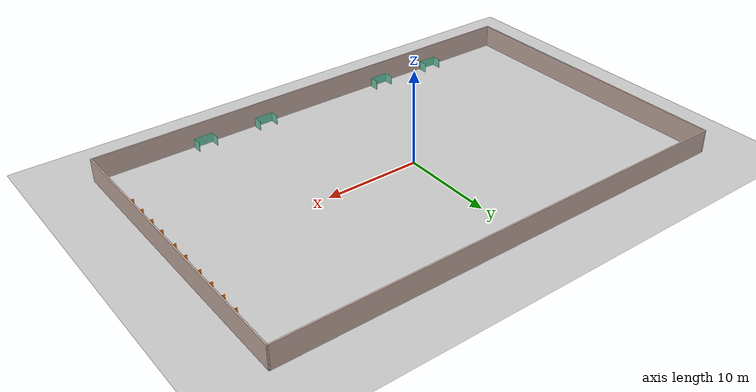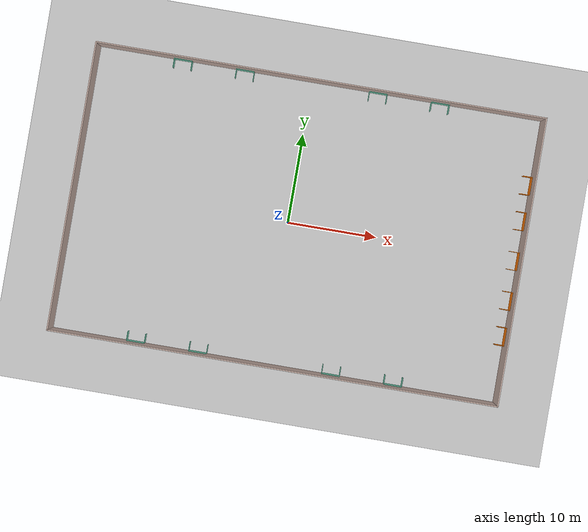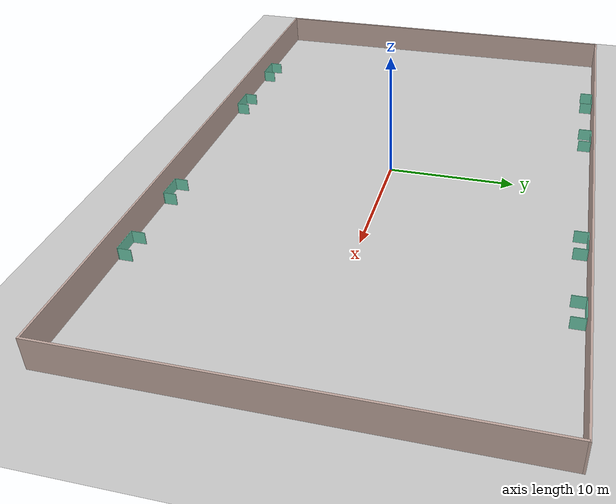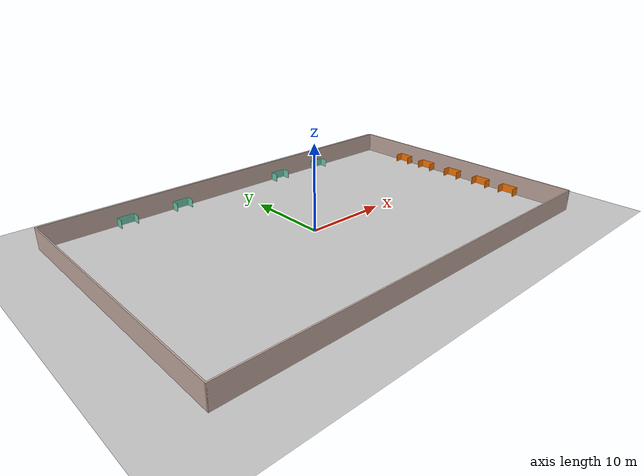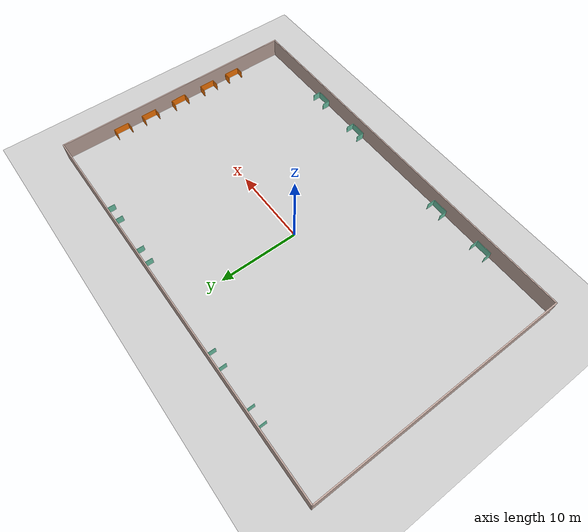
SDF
<sdf version="1.6">
 <world name="default">
  <include><uri>model://sun</uri></include>
  <include><uri>model://ground_plane</uri></include>
  <gravity>0 0 -9.8</gravity>
  <physics default="0" name="default_physics" type="ode">
   <max_step_size>0.001</max_step_size>
   <real_time_factor>1</real_time_factor>
   <real_time_update_rate>1000</real_time_update_rate>
  </physics>
  <model name="robot_park_01">
   <include><uri>model://robot_park</uri></include>
   <pose>14.5 -15.9 -0.05 0 0 0</pose>
  </model>
  <model name="robot_park_02">
   <include><uri>model://robot_park</uri></include>
   <pose>7.5 -15.9 -0.05 0 0 0</pose>
  </model>
  <model name="robot_park_03">
   <include><uri>model://robot_park</uri></include>
   <pose>-7.5 -15.9 -0.05 0 0 0</pose>
  </model>
  <model name="robot_park_04">
   <include><uri>model://robot_park</uri></include>
   <pose>-14.5 -15.9 -0.05 0 0 0</pose>
  </model>
  <model name="robot_park_05">
   <include><uri>model://robot_park</uri></include>
   <pose>14.5 15.9 0 0 0 3.141592654</pose>
  </model>
  <model name="robot_park_06">
   <include><uri>model://robot_park</uri></include>
   <pose>7.5 15.9 0 0 0 3.141592654</pose>
  </model>
  <model name="robot_park_07">
   <include><uri>model://robot_park</uri></include>
   <pose>-7.5 15.9 0 0 0 3.141592654</pose>
  </model>
  <model name="robot_park_08">
   <include><uri>model://robot_park</uri></include>
   <pose>-14.5 15.9 0 0 0 3.141592654</pose>
  </model>
  <model name="product_park_01">
   <include><uri>model://product_park</uri></include>
   <pose>25.91 8.5 0 0 0 1.570796327</pose>
  </model>
  <model name="product_park_02">
   <include><uri>model://product_park</uri></include>
   <pose>25.91 4.5 0 0 0 1.570796327</pose>
  </model>
  <model name="product_park_03">
   <include><uri>model://product_park</uri></include>
   <pose>25.91 0.0 0 0 0 1.570796327</pose>
  </model>
  <model name="product_park_04">
   <include><uri>model://product_park</uri></include>
   <pose>25.91 -4.5 0 0 0 1.570796327</pose>
  </model>
  <model name="product_park_05">
   <include><uri>model://product_park</uri></include>
   <pose>25.91 -8.5 0 0 0 1.570796327</pose>
  </model>
  <model name="walls_01"><include><uri>model://walls_50x32</uri></include></model>
  <physics type="ode">
   <max_step_size>0.008</max_step_size>
   <real_time_factor>1</real_time_factor>
   <real_time_update_rate>125</real_time_update_rate>
   <gravity>0 0 -9.8</gravity>
  </physics>
 </world>
</sdf>

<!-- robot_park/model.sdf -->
<sdf version='1.6'>
  <model name='robot_park'>
    <pose frame=''>0 0.5 0 0 -0 0</pose>
    <link name='Wall_11'>
      <collision name='Wall_11_Collision'>
        <geometry>
          <box>
            <size>1.05 0.05 1</size>
          </box>
        </geometry>
        <pose frame=''>0 0 0.5 0 -0 0</pose>
      </collision>
      <visual name='Wall_11_Visual'>
        <pose frame=''>0 0 0.5 0 -0 0</pose>
        <geometry>
          <box>
            <size>1.05 0.05 1</size>
          </box>
        </geometry>
        <material>
          <script>
            <uri>file://media/materials/scripts/gazebo.material</uri>
            <name>Gazebo/Grey</name>
          </script>
          <ambient>0.435294 0.796078 0.67451 1</ambient>
        </material>
        <meta>
          <layer>0</layer>
        </meta>
      </visual>
      <pose frame=''>-1 -0 0 0 -0 1.5708</pose>
    </link>
    <link name='Wall_13'>
      <collision name='Wall_13_Collision'>
        <geometry>
          <box>
            <size>2.05001 0.05 1</size>
          </box>
        </geometry>
        <pose frame=''>0 0 0.5 0 -0 0</pose>
      </collision>
      <visual name='Wall_13_Visual'>
        <pose frame=''>0 0 0.5 0 -0 0</pose>
        <geometry>
          <box>
            <size>2.05001 0.05 1</size>
          </box>
        </geometry>
        <material>
          <script>
            <uri>file://media/materials/scripts/gazebo.material</uri>
            <name>Gazebo/Grey</name>
          </script>
          <ambient>0.435294 0.796078 0.67451 1</ambient>
        </material>
        <meta>
          <layer>0</layer>
        </meta>
      </visual>
      <pose frame=''>0 -0.5 0 0 -0 0</pose>
    </link>
    <link name='Wall_15'>
      <collision name='Wall_15_Collision'>
        <geometry>
          <box>
            <size>1.05 0.05 1</size>
          </box>
        </geometry>
        <pose frame=''>0 0 0.5 0 -0 0</pose>
      </collision>
      <visual name='Wall_15_Visual'>
        <pose frame=''>0 0 0.5 0 -0 0</pose>
        <geometry>
          <box>
            <size>1.05 0.05 1</size>
          </box>
        </geometry>
        <material>
          <script>
            <uri>file://media/materials/scripts/gazebo.material</uri>
            <name>Gazebo/Grey</name>
          </script>
          <ambient>0.435294 0.796078 0.67451 1</ambient>
        </material>
        <meta>
          <layer>0</layer>
        </meta>
      </visual>
      <pose frame=''>1 -0 0 0 -0 1.5708</pose>
    </link>
    <static>1</static>
  </model>
</sdf>

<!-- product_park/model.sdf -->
<sdf version='1.6'>
  <model name='product_park'>
    <pose frame=''>0 0.5 0 0 -0 0</pose>
    <link name='Wall_11'>
      <collision name='Wall_11_Collision'>
        <geometry>
          <box>
            <size>1.05 0.05 1</size>
          </box>
        </geometry>
        <pose frame=''>0 0 0.5 0 -0 0</pose>
      </collision>
      <visual name='Wall_11_Visual'>
        <pose frame=''>0 0 0.5 0 -0 0</pose>
        <geometry>
          <box>
            <size>1.05 0.05 1</size>
          </box>
        </geometry>
        <material>
          <script>
            <uri>file://media/materials/scripts/gazebo.material</uri>
            <name>Gazebo/Grey</name>
          </script>
          <ambient>0.996078 0.47451 0.0196078 1</ambient>
        </material>
        <meta>
          <layer>0</layer>
        </meta>
      </visual>
      <pose frame=''>-1 -0 0 0 -0 1.5708</pose>
    </link>
    <link name='Wall_13'>
      <collision name='Wall_13_Collision'>
        <geometry>
          <box>
            <size>2.05001 0.05 1</size>
          </box>
        </geometry>
        <pose frame=''>0 0 0.5 0 -0 0</pose>
      </collision>
      <visual name='Wall_13_Visual'>
        <pose frame=''>0 0 0.5 0 -0 0</pose>
        <geometry>
          <box>
            <size>2.05001 0.05 1</size>
          </box>
        </geometry>
        <material>
          <script>
            <uri>file://media/materials/scripts/gazebo.material</uri>
            <name>Gazebo/Grey</name>
          </script>
          <ambient>0.996078 0.47451 0.0196078 1</ambient>
        </material>
        <meta>
          <layer>0</layer>
        </meta>
      </visual>
      <pose frame=''>0 -0.5 0 0 -0 0</pose>
    </link>
    <link name='Wall_15'>
      <collision name='Wall_15_Collision'>
        <geometry>
          <box>
            <size>1.05 0.05 1</size>
          </box>
        </geometry>
        <pose frame=''>0 0 0.5 0 -0 0</pose>
      </collision>
      <visual name='Wall_15_Visual'>
        <pose frame=''>0 0 0.5 0 -0 0</pose>
        <geometry>
          <box>
            <size>1.05 0.05 1</size>
          </box>
        </geometry>
        <material>
          <script>
            <uri>file://media/materials/scripts/gazebo.material</uri>
            <name>Gazebo/Grey</name>
          </script>
          <ambient>0.996078 0.47451 0.0196078 1</ambient>
        </material>
        <meta>
          <layer>0</layer>
        </meta>
      </visual>
      <pose frame=''>1 -0 0 0 -0 1.5708</pose>
    </link>
    <static>1</static>
  </model>
</sdf>

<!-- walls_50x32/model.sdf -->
<sdf version='1.6'>
  <model name='walls_50x32'>
    <pose frame=''>1 0 0 0 -0 0</pose>
    <link name='Wall_0'>
      <collision name='Wall_0_Collision'>
        <geometry>
          <box>
            <size>32.15 0.15 2.5</size>
          </box>
        </geometry>
        <pose frame=''>0 0 1.25 0 -0 0</pose>
      </collision>
      <visual name='Wall_0_Visual'>
        <pose frame=''>0 0 1.25 0 -0 0</pose>
        <geometry>
          <box>
            <size>32.15 0.15 2.5</size>
          </box>
        </geometry>
        <material>
          <script>
            <uri>file://media/materials/scripts/gazebo.material</uri>
            <name>Gazebo/Grey</name>
          </script>
          <ambient>0.760784 0.662745 0.627451 1</ambient>
        </material>
        <meta>
          <layer>0</layer>
        </meta>
      </visual>
      <pose frame=''>-25 0 0 0 -0 1.5708</pose>
    </link>
    <link name='Wall_2'>
      <collision name='Wall_2_Collision'>
        <geometry>
          <box>
            <size>50.15 0.15 2.5</size>
          </box>
        </geometry>
        <pose frame=''>0 0 1.25 0 -0 0</pose>
      </collision>
      <visual name='Wall_2_Visual'>
        <pose frame=''>0 0 1.25 0 -0 0</pose>
        <geometry>
          <box>
            <size>50.15 0.15 2.5</size>
          </box>
        </geometry>
        <material>
          <script>
            <uri>file://media/materials/scripts/gazebo.material</uri>
            <name>Gazebo/Grey</name>
          </script>
          <ambient>0.760784 0.662745 0.627451 1</ambient>
        </material>
        <meta>
          <layer>0</layer>
        </meta>
      </visual>
      <pose frame=''>0 -16 0 0 -0 0</pose>
    </link>
    <link name='Wall_4'>
      <collision name='Wall_4_Collision'>
        <geometry>
          <box>
            <size>32.15 0.15 2.5</size>
          </box>
        </geometry>
        <pose frame=''>0 0 1.25 0 -0 0</pose>
      </collision>
      <visual name='Wall_4_Visual'>
        <pose frame=''>0 0 1.25 0 -0 0</pose>
        <geometry>
          <box>
            <size>32.15 0.15 2.5</size>
          </box>
        </geometry>
        <material>
          <script>
            <uri>file://media/materials/scripts/gazebo.material</uri>
            <name>Gazebo/Grey</name>
          </script>
          <ambient>0.760784 0.662745 0.627451 1</ambient>
        </material>
        <meta>
          <layer>0</layer>
        </meta>
      </visual>
      <pose frame=''>25 0 0 0 -0 1.5708</pose>
    </link>
    <link name='Wall_6'>
      <collision name='Wall_6_Collision'>
        <geometry>
          <box>
            <size>50.15 0.15 2.5</size>
          </box>
        </geometry>
        <pose frame=''>0 0 1.25 0 -0 0</pose>
      </collision>
      <visual name='Wall_6_Visual'>
        <pose frame=''>0 0 1.25 0 -0 0</pose>
        <geometry>
          <box>
            <size>50.15 0.15 2.5</size>
          </box>
        </geometry>
        <material>
          <script>
            <uri>file://media/materials/scripts/gazebo.material</uri>
            <name>Gazebo/Grey</name>
          </script>
          <ambient>0.760784 0.662745 0.627451 1</ambient>
        </material>
        <meta>
          <layer>0</layer>
        </meta>
      </visual>
      <pose frame=''>0 16 0 0 -0 0</pose>
    </link>
    <static>1</static>
  </model>
</sdf>
